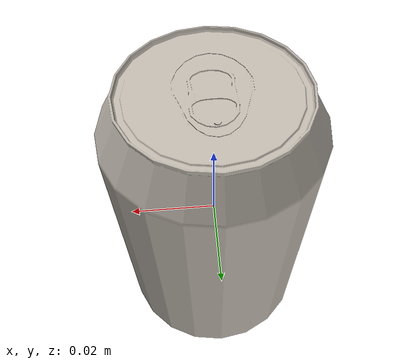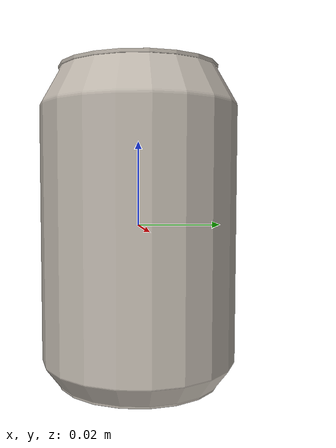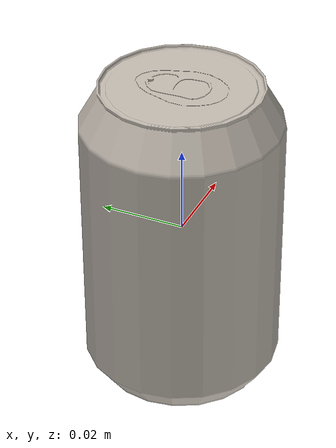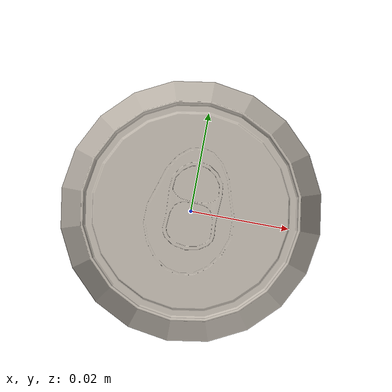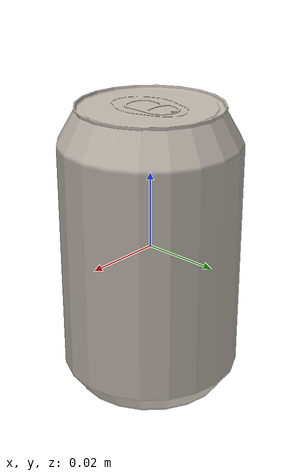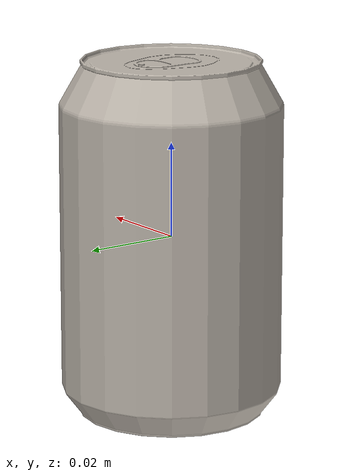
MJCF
<mujoco model="lemon_0">
  <asset>
    <mesh file="visual/model_normalized_0.obj" name="lemon_0_model_normalized_0_vis" scale="0.07499999999999998 0.07499999999999998 0.07499999999999998" refquat="0.7071067811865475 0.0 0.0 0.7071067811865476" />
    <mesh file="collision/model_normalized_collision_22.obj" name="lemon_0_model_normalized_collision_22._coll" scale="0.07499999999999998 0.07499999999999998 0.07499999999999998" refquat="0.7071067811865475 0.0 0.0 0.7071067811865476" />
    <mesh file="collision/model_normalized_collision_23.obj" name="lemon_0_model_normalized_collision_23._coll" scale="0.07499999999999998 0.07499999999999998 0.07499999999999998" refquat="0.7071067811865475 0.0 0.0 0.7071067811865476" />
    <mesh file="collision/model_normalized_collision_21.obj" name="lemon_0_model_normalized_collision_21._coll" scale="0.07499999999999998 0.07499999999999998 0.07499999999999998" refquat="0.7071067811865475 0.0 0.0 0.7071067811865476" />
    <mesh file="collision/model_normalized_collision_20.obj" name="lemon_0_model_normalized_collision_20._coll" scale="0.07499999999999998 0.07499999999999998 0.07499999999999998" refquat="0.7071067811865475 0.0 0.0 0.7071067811865476" />
    <mesh file="collision/model_normalized_collision_24.obj" name="lemon_0_model_normalized_collision_24._coll" scale="0.07499999999999998 0.07499999999999998 0.07499999999999998" refquat="0.7071067811865475 0.0 0.0 0.7071067811865476" />
    <mesh file="collision/model_normalized_collision_30.obj" name="lemon_0_model_normalized_collision_30._coll" scale="0.07499999999999998 0.07499999999999998 0.07499999999999998" refquat="0.7071067811865475 0.0 0.0 0.7071067811865476" />
    <mesh file="collision/model_normalized_collision_18.obj" name="lemon_0_model_normalized_collision_18._coll" scale="0.07499999999999998 0.07499999999999998 0.07499999999999998" refquat="0.7071067811865475 0.0 0.0 0.7071067811865476" />
    <mesh file="collision/model_normalized_collision_19.obj" name="lemon_0_model_normalized_collision_19._coll" scale="0.07499999999999998 0.07499999999999998 0.07499999999999998" refquat="0.7071067811865475 0.0 0.0 0.7071067811865476" />
    <mesh file="collision/model_normalized_collision_31.obj" name="lemon_0_model_normalized_collision_31._coll" scale="0.07499999999999998 0.07499999999999998 0.07499999999999998" refquat="0.7071067811865475 0.0 0.0 0.7071067811865476" />
    <mesh file="collision/model_normalized_collision_25.obj" name="lemon_0_model_normalized_collision_25._coll" scale="0.07499999999999998 0.07499999999999998 0.07499999999999998" refquat="0.7071067811865475 0.0 0.0 0.7071067811865476" />
    <mesh file="collision/model_normalized_collision_27.obj" name="lemon_0_model_normalized_collision_27._coll" scale="0.07499999999999998 0.07499999999999998 0.07499999999999998" refquat="0.7071067811865475 0.0 0.0 0.7071067811865476" />
    <mesh file="collision/model_normalized_collision_26.obj" name="lemon_0_model_normalized_collision_26._coll" scale="0.07499999999999998 0.07499999999999998 0.07499999999999998" refquat="0.7071067811865475 0.0 0.0 0.7071067811865476" />
    <mesh file="collision/model_normalized_collision_9.obj" name="lemon_0_model_normalized_collision_9._coll" scale="0.07499999999999998 0.07499999999999998 0.07499999999999998" refquat="0.7071067811865475 0.0 0.0 0.7071067811865476" />
    <mesh file="collision/model_normalized_collision_8.obj" name="lemon_0_model_normalized_collision_8._coll" scale="0.07499999999999998 0.07499999999999998 0.07499999999999998" refquat="0.7071067811865475 0.0 0.0 0.7071067811865476" />
    <mesh file="collision/model_normalized_collision_6.obj" name="lemon_0_model_normalized_collision_6._coll" scale="0.07499999999999998 0.07499999999999998 0.07499999999999998" refquat="0.7071067811865475 0.0 0.0 0.7071067811865476" />
    <mesh file="collision/model_normalized_collision_7.obj" name="lemon_0_model_normalized_collision_7._coll" scale="0.07499999999999998 0.07499999999999998 0.07499999999999998" refquat="0.7071067811865475 0.0 0.0 0.7071067811865476" />
    <mesh file="collision/model_normalized_collision_5.obj" name="lemon_0_model_normalized_collision_5._coll" scale="0.07499999999999998 0.07499999999999998 0.07499999999999998" refquat="0.7071067811865475 0.0 0.0 0.7071067811865476" />
    <mesh file="collision/model_normalized_collision_4.obj" name="lemon_0_model_normalized_collision_4._coll" scale="0.07499999999999998 0.07499999999999998 0.07499999999999998" refquat="0.7071067811865475 0.0 0.0 0.7071067811865476" />
    <mesh file="collision/model_normalized_collision_0.obj" name="lemon_0_model_normalized_collision_0._coll" scale="0.07499999999999998 0.07499999999999998 0.07499999999999998" refquat="0.7071067811865475 0.0 0.0 0.7071067811865476" />
    <mesh file="collision/model_normalized_collision_1.obj" name="lemon_0_model_normalized_collision_1._coll" scale="0.07499999999999998 0.07499999999999998 0.07499999999999998" refquat="0.7071067811865475 0.0 0.0 0.7071067811865476" />
    <mesh file="collision/model_normalized_collision_3.obj" name="lemon_0_model_normalized_collision_3._coll" scale="0.07499999999999998 0.07499999999999998 0.07499999999999998" refquat="0.7071067811865475 0.0 0.0 0.7071067811865476" />
    <mesh file="collision/model_normalized_collision_2.obj" name="lemon_0_model_normalized_collision_2._coll" scale="0.07499999999999998 0.07499999999999998 0.07499999999999998" refquat="0.7071067811865475 0.0 0.0 0.7071067811865476" />
    <mesh file="collision/model_normalized_collision_17.obj" name="lemon_0_model_normalized_collision_17._coll" scale="0.07499999999999998 0.07499999999999998 0.07499999999999998" refquat="0.7071067811865475 0.0 0.0 0.7071067811865476" />
    <mesh file="collision/model_normalized_collision_16.obj" name="lemon_0_model_normalized_collision_16._coll" scale="0.07499999999999998 0.07499999999999998 0.07499999999999998" refquat="0.7071067811865475 0.0 0.0 0.7071067811865476" />
    <mesh file="collision/model_normalized_collision_28.obj" name="lemon_0_model_normalized_collision_28._coll" scale="0.07499999999999998 0.07499999999999998 0.07499999999999998" refquat="0.7071067811865475 0.0 0.0 0.7071067811865476" />
    <mesh file="collision/model_normalized_collision_14.obj" name="lemon_0_model_normalized_collision_14._coll" scale="0.07499999999999998 0.07499999999999998 0.07499999999999998" refquat="0.7071067811865475 0.0 0.0 0.7071067811865476" />
    <mesh file="collision/model_normalized_collision_15.obj" name="lemon_0_model_normalized_collision_15._coll" scale="0.07499999999999998 0.07499999999999998 0.07499999999999998" refquat="0.7071067811865475 0.0 0.0 0.7071067811865476" />
    <mesh file="collision/model_normalized_collision_29.obj" name="lemon_0_model_normalized_collision_29._coll" scale="0.07499999999999998 0.07499999999999998 0.07499999999999998" refquat="0.7071067811865475 0.0 0.0 0.7071067811865476" />
    <mesh file="collision/model_normalized_collision_11.obj" name="lemon_0_model_normalized_collision_11._coll" scale="0.07499999999999998 0.07499999999999998 0.07499999999999998" refquat="0.7071067811865475 0.0 0.0 0.7071067811865476" />
    <mesh file="collision/model_normalized_collision_10.obj" name="lemon_0_model_normalized_collision_10._coll" scale="0.07499999999999998 0.07499999999999998 0.07499999999999998" refquat="0.7071067811865475 0.0 0.0 0.7071067811865476" />
    <mesh file="collision/model_normalized_collision_12.obj" name="lemon_0_model_normalized_collision_12._coll" scale="0.07499999999999998 0.07499999999999998 0.07499999999999998" refquat="0.7071067811865475 0.0 0.0 0.7071067811865476" />
    <mesh file="collision/model_normalized_collision_13.obj" name="lemon_0_model_normalized_collision_13._coll" scale="0.07499999999999998 0.07499999999999998 0.07499999999999998" refquat="0.7071067811865475 0.0 0.0 0.7071067811865476" />
    <texture type="2d" name="lemon_0_image0" file="visual/image0.png" />
    <material name="lemon_0_Lemon.001" texture="lemon_0_image0" specular="0.5" shininess="0.314706008" />
  </asset>
  <worldbody>
    <body>
      <joint name="lemon_0_object_joint" type="free" damping="1." /><body name="lemon_0_object">
        <geom solimp="0.998 0.998 0.001" solref="0.001 1" density="300" friction="0.95 0.3 0.1" type="mesh" mesh="lemon_0_model_normalized_0_vis" conaffinity="0" contype="0" group="1" material="lemon_0_Lemon.001" />
        <geom solimp="0.998 0.998 0.001" solref="0.001 1" density="300" friction="0.95 0.3 0.1" type="mesh" mesh="lemon_0_model_normalized_collision_22._coll" group="0" rgba="0.8 0.8 0.8 0.0" />
        <geom solimp="0.998 0.998 0.001" solref="0.001 1" density="300" friction="0.95 0.3 0.1" type="mesh" mesh="lemon_0_model_normalized_collision_23._coll" group="0" rgba="0.8 0.8 0.8 0.0" />
        <geom solimp="0.998 0.998 0.001" solref="0.001 1" density="300" friction="0.95 0.3 0.1" type="mesh" mesh="lemon_0_model_normalized_collision_21._coll" group="0" rgba="0.8 0.8 0.8 0.0" />
        <geom solimp="0.998 0.998 0.001" solref="0.001 1" density="300" friction="0.95 0.3 0.1" type="mesh" mesh="lemon_0_model_normalized_collision_20._coll" group="0" rgba="0.8 0.8 0.8 0.0" />
        <geom solimp="0.998 0.998 0.001" solref="0.001 1" density="300" friction="0.95 0.3 0.1" type="mesh" mesh="lemon_0_model_normalized_collision_24._coll" group="0" rgba="0.8 0.8 0.8 0.0" />
        <geom solimp="0.998 0.998 0.001" solref="0.001 1" density="300" friction="0.95 0.3 0.1" type="mesh" mesh="lemon_0_model_normalized_collision_30._coll" group="0" rgba="0.8 0.8 0.8 0.0" />
        <geom solimp="0.998 0.998 0.001" solref="0.001 1" density="300" friction="0.95 0.3 0.1" type="mesh" mesh="lemon_0_model_normalized_collision_18._coll" group="0" rgba="0.8 0.8 0.8 0.0" />
        <geom solimp="0.998 0.998 0.001" solref="0.001 1" density="300" friction="0.95 0.3 0.1" type="mesh" mesh="lemon_0_model_normalized_collision_19._coll" group="0" rgba="0.8 0.8 0.8 0.0" />
        <geom solimp="0.998 0.998 0.001" solref="0.001 1" density="300" friction="0.95 0.3 0.1" type="mesh" mesh="lemon_0_model_normalized_collision_31._coll" group="0" rgba="0.8 0.8 0.8 0.0" />
        <geom solimp="0.998 0.998 0.001" solref="0.001 1" density="300" friction="0.95 0.3 0.1" type="mesh" mesh="lemon_0_model_normalized_collision_25._coll" group="0" rgba="0.8 0.8 0.8 0.0" />
        <geom solimp="0.998 0.998 0.001" solref="0.001 1" density="300" friction="0.95 0.3 0.1" type="mesh" mesh="lemon_0_model_normalized_collision_27._coll" group="0" rgba="0.8 0.8 0.8 0.0" />
        <geom solimp="0.998 0.998 0.001" solref="0.001 1" density="300" friction="0.95 0.3 0.1" type="mesh" mesh="lemon_0_model_normalized_collision_26._coll" group="0" rgba="0.8 0.8 0.8 0.0" />
        <geom solimp="0.998 0.998 0.001" solref="0.001 1" density="300" friction="0.95 0.3 0.1" type="mesh" mesh="lemon_0_model_normalized_collision_9._coll" group="0" rgba="0.8 0.8 0.8 0.0" />
        <geom solimp="0.998 0.998 0.001" solref="0.001 1" density="300" friction="0.95 0.3 0.1" type="mesh" mesh="lemon_0_model_normalized_collision_8._coll" group="0" rgba="0.8 0.8 0.8 0.0" />
        <geom solimp="0.998 0.998 0.001" solref="0.001 1" density="300" friction="0.95 0.3 0.1" type="mesh" mesh="lemon_0_model_normalized_collision_6._coll" group="0" rgba="0.8 0.8 0.8 0.0" />
        <geom solimp="0.998 0.998 0.001" solref="0.001 1" density="300" friction="0.95 0.3 0.1" type="mesh" mesh="lemon_0_model_normalized_collision_7._coll" group="0" rgba="0.8 0.8 0.8 0.0" />
        <geom solimp="0.998 0.998 0.001" solref="0.001 1" density="300" friction="0.95 0.3 0.1" type="mesh" mesh="lemon_0_model_normalized_collision_5._coll" group="0" rgba="0.8 0.8 0.8 0.0" />
        <geom solimp="0.998 0.998 0.001" solref="0.001 1" density="300" friction="0.95 0.3 0.1" type="mesh" mesh="lemon_0_model_normalized_collision_4._coll" group="0" rgba="0.8 0.8 0.8 0.0" />
        <geom solimp="0.998 0.998 0.001" solref="0.001 1" density="300" friction="0.95 0.3 0.1" type="mesh" mesh="lemon_0_model_normalized_collision_0._coll" group="0" rgba="0.8 0.8 0.8 0.0" />
        <geom solimp="0.998 0.998 0.001" solref="0.001 1" density="300" friction="0.95 0.3 0.1" type="mesh" mesh="lemon_0_model_normalized_collision_1._coll" group="0" rgba="0.8 0.8 0.8 0.0" />
        <geom solimp="0.998 0.998 0.001" solref="0.001 1" density="300" friction="0.95 0.3 0.1" type="mesh" mesh="lemon_0_model_normalized_collision_3._coll" group="0" rgba="0.8 0.8 0.8 0.0" />
        <geom solimp="0.998 0.998 0.001" solref="0.001 1" density="300" friction="0.95 0.3 0.1" type="mesh" mesh="lemon_0_model_normalized_collision_2._coll" group="0" rgba="0.8 0.8 0.8 0.0" />
        <geom solimp="0.998 0.998 0.001" solref="0.001 1" density="300" friction="0.95 0.3 0.1" type="mesh" mesh="lemon_0_model_normalized_collision_17._coll" group="0" rgba="0.8 0.8 0.8 0.0" />
        <geom solimp="0.998 0.998 0.001" solref="0.001 1" density="300" friction="0.95 0.3 0.1" type="mesh" mesh="lemon_0_model_normalized_collision_16._coll" group="0" rgba="0.8 0.8 0.8 0.0" />
        <geom solimp="0.998 0.998 0.001" solref="0.001 1" density="300" friction="0.95 0.3 0.1" type="mesh" mesh="lemon_0_model_normalized_collision_28._coll" group="0" rgba="0.8 0.8 0.8 0.0" />
        <geom solimp="0.998 0.998 0.001" solref="0.001 1" density="300" friction="0.95 0.3 0.1" type="mesh" mesh="lemon_0_model_normalized_collision_14._coll" group="0" rgba="0.8 0.8 0.8 0.0" />
        <geom solimp="0.998 0.998 0.001" solref="0.001 1" density="300" friction="0.95 0.3 0.1" type="mesh" mesh="lemon_0_model_normalized_collision_15._coll" group="0" rgba="0.8 0.8 0.8 0.0" />
        <geom solimp="0.998 0.998 0.001" solref="0.001 1" density="300" friction="0.95 0.3 0.1" type="mesh" mesh="lemon_0_model_normalized_collision_29._coll" group="0" rgba="0.8 0.8 0.8 0.0" />
        <geom solimp="0.998 0.998 0.001" solref="0.001 1" density="300" friction="0.95 0.3 0.1" type="mesh" mesh="lemon_0_model_normalized_collision_11._coll" group="0" rgba="0.8 0.8 0.8 0.0" />
        <geom solimp="0.998 0.998 0.001" solref="0.001 1" density="300" friction="0.95 0.3 0.1" type="mesh" mesh="lemon_0_model_normalized_collision_10._coll" group="0" rgba="0.8 0.8 0.8 0.0" />
        <geom solimp="0.998 0.998 0.001" solref="0.001 1" density="300" friction="0.95 0.3 0.1" type="mesh" mesh="lemon_0_model_normalized_collision_12._coll" group="0" rgba="0.8 0.8 0.8 0.0" />
        <geom solimp="0.998 0.998 0.001" solref="0.001 1" density="300" friction="0.95 0.3 0.1" type="mesh" mesh="lemon_0_model_normalized_collision_13._coll" group="0" rgba="0.8 0.8 0.8 0.0" />
      </body>

    </body>
  </worldbody>
</mujoco>
